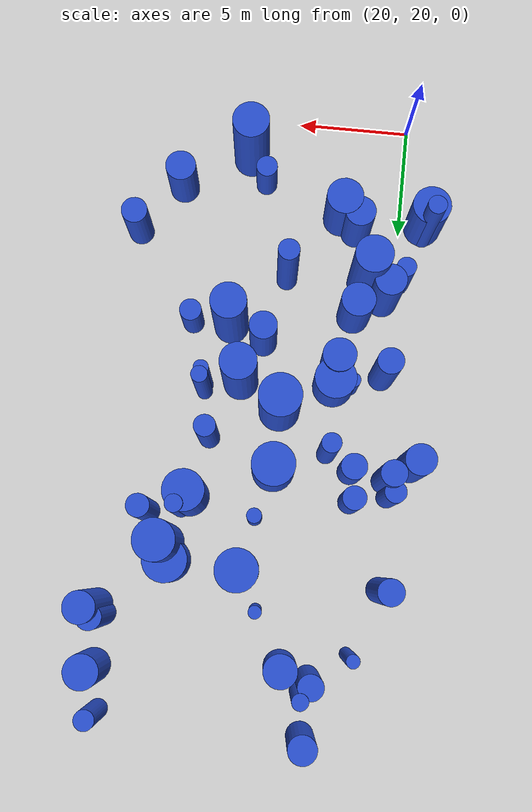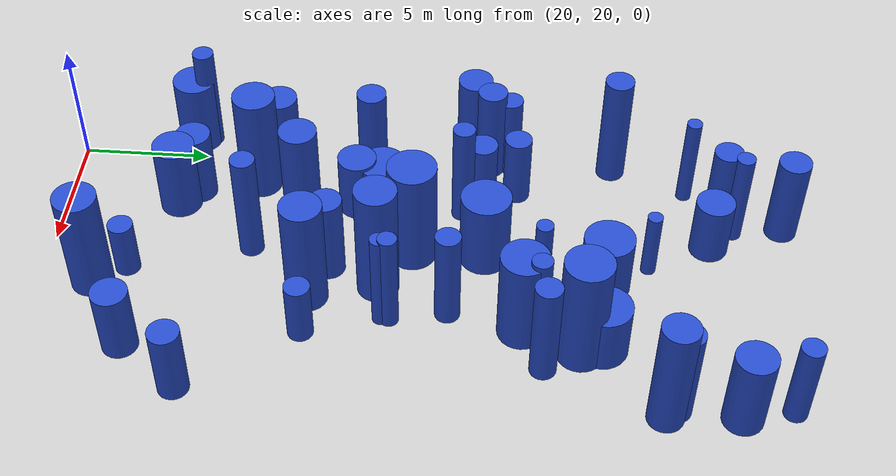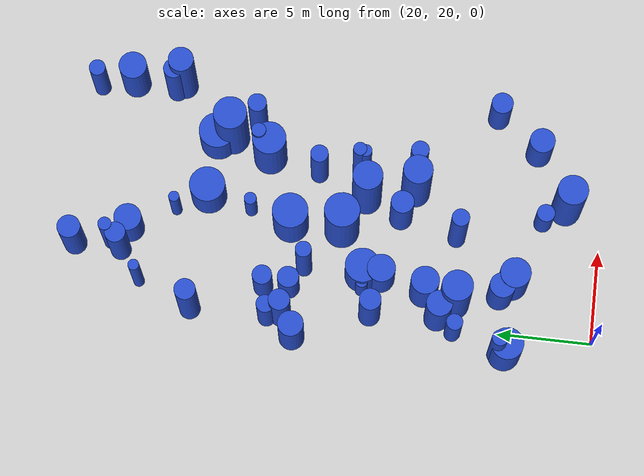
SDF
<sdf version="1.6">
 <world name="default">
  <model name="ground_plane">
   <static>1</static>
   <link name="link">
    <collision name="collision">
     <geometry><plane><normal>0 0 1</normal><size>100 100</size></plane></geometry>
     <surface><friction><ode><mu>100</mu><mu2>50</mu2></ode></friction></surface>
    </collision>
    <visual name="visual">
     <cast_shadows>0</cast_shadows>
     <geometry><plane><normal>0 0 1</normal><size>100 100</size></plane></geometry>
     <material>
      <script><uri>file://media/materials/scripts/gazebo.material</uri><name>Gazebo/Grey</name></script>
     </material>
    </visual>
   </link>
  </model>
  <model name="3">
   <static>0</static>
   <link name="link">
    <inertial>
     <mass>2</mass>
     <inertia><ixx>2.87295</ixx><ixy>0</ixy><ixz>0</ixz><iyy>2.87295</iyy><iyz>0</iyz><izz>0.289082</izz></inertia>
    </inertial>
    <collision name="collision">
     <geometry><cylinder><length>4.04604</length><radius>0.537664</radius></cylinder></geometry>
     <surface><contact><collide_without_contact>1</collide_without_contact></contact></surface>
    </collision>
    <visual name="visual">
     <geometry><cylinder><length>4.04604</length><radius>0.537664</radius></cylinder></geometry>
     <material>
      <script><uri>file://media/materials/scripts/gazebo.material</uri><name>Gazebo/Blue</name></script>
     </material>
    </visual>
    <gravity>0</gravity>
   </link>
   <pose>31.5919 43.4807 2.02302 0 -0 0</pose>
  </model>
  <model name="7">
   <static>0</static>
   <link name="link">
    <inertial>
     <mass>2</mass>
     <inertia><ixx>1.4943</ixx><ixy>0</ixy><ixz>0</ixz><iyy>1.4943</iyy><iyz>0</iyz><izz>0.904454</izz></inertia>
    </inertial>
    <collision name="collision">
     <geometry><cylinder><length>2.50048</length><radius>0.951028</radius></cylinder></geometry>
     <surface><contact><collide_without_contact>1</collide_without_contact></contact></surface>
    </collision>
    <visual name="visual">
     <geometry><cylinder><length>2.50048</length><radius>0.951028</radius></cylinder></geometry>
     <material>
      <script><uri>file://media/materials/scripts/gazebo.material</uri><name>Gazebo/Blue</name></script>
     </material>
    </visual>
    <gravity>0</gravity>
   </link>
   <pose>25.9011 41.0667 1.25024 0 -0 0</pose>
  </model>
  <model name="15">
   <static>0</static>
   <link name="link">
    <inertial>
     <mass>2</mass>
     <inertia><ixx>2.85679</ixx><ixy>0</ixy><ixz>0</ixz><iyy>2.85679</iyy><iyz>0</iyz><izz>0.328589</izz></inertia>
    </inertial>
    <collision name="collision">
     <geometry><cylinder><length>4.01932</length><radius>0.573227</radius></cylinder></geometry>
     <surface><contact><collide_without_contact>1</collide_without_contact></contact></surface>
    </collision>
    <visual name="visual">
     <geometry><cylinder><length>4.01932</length><radius>0.573227</radius></cylinder></geometry>
     <material>
      <script><uri>file://media/materials/scripts/gazebo.material</uri><name>Gazebo/Blue</name></script>
     </material>
    </visual>
    <gravity>0</gravity>
   </link>
   <pose>20.2805 31.834 2.00966 0 -0 0</pose>
  </model>
  <model name="25">
   <static>0</static>
   <link name="link">
    <inertial>
     <mass>2</mass>
     <inertia><ixx>3.93705</ixx><ixy>0</ixy><ixz>0</ixz><iyy>3.93705</iyy><iyz>0</iyz><izz>0.614086</izz></inertia>
    </inertial>
    <collision name="collision">
     <geometry><cylinder><length>4.66691</length><radius>0.783636</radius></cylinder></geometry>
     <surface><contact><collide_without_contact>1</collide_without_contact></contact></surface>
    </collision>
    <visual name="visual">
     <geometry><cylinder><length>4.66691</length><radius>0.783636</radius></cylinder></geometry>
     <material>
      <script><uri>file://media/materials/scripts/gazebo.material</uri><name>Gazebo/Blue</name></script>
     </material>
    </visual>
    <gravity>0</gravity>
   </link>
   <pose>27.2784 30.0628 2.33346 0 -0 0</pose>
  </model>
  <model name="26">
   <static>0</static>
   <link name="link">
    <inertial>
     <mass>2</mass>
     <inertia>
      <ixx>0.763475</ixx>
      <ixy>0</ixy>
      <ixz>0</ixz>
      <iyy>0.763475</iyy>
      <iyz>0</iyz>
      <izz>0.108219</izz>
     </inertia>
    </inertial>
    <collision name="collision">
     <geometry><cylinder><length>2.06305</length><radius>0.328966</radius></cylinder></geometry>
     <surface><contact><collide_without_contact>1</collide_without_contact></contact></surface>
    </collision>
    <visual name="visual">
     <geometry><cylinder><length>2.06305</length><radius>0.328966</radius></cylinder></geometry>
     <material>
      <script><uri>file://media/materials/scripts/gazebo.material</uri><name>Gazebo/Blue</name></script>
     </material>
    </visual>
    <gravity>0</gravity>
   </link>
   <pose>21.6361 32.4049 1.03153 0 -0 0</pose>
  </model>
  <model name="32">
   <static>0</static>
   <link name="link">
    <inertial>
     <mass>2</mass>
     <inertia><ixx>2.84004</ixx><ixy>0</ixy><ixz>0</ixz><iyy>2.84004</iyy><iyz>0</iyz><izz>0.148295</izz></inertia>
    </inertial>
    <collision name="collision">
     <geometry><cylinder><length>4.07374</length><radius>0.385092</radius></cylinder></geometry>
     <surface><contact><collide_without_contact>1</collide_without_contact></contact></surface>
    </collision>
    <visual name="visual">
     <geometry><cylinder><length>4.07374</length><radius>0.385092</radius></cylinder></geometry>
     <material>
      <script><uri>file://media/materials/scripts/gazebo.material</uri><name>Gazebo/Blue</name></script>
     </material>
    </visual>
    <gravity>0</gravity>
   </link>
   <pose>28.69 38.5987 2.03687 0 -0 0</pose>
  </model>
  <model name="43">
   <static>0</static>
   <link name="link">
    <inertial>
     <mass>2</mass>
     <inertia><ixx>3.60699</ixx><ixy>0</ixy><ixz>0</ixz><iyy>3.60699</iyy><iyz>0</iyz><izz>0.218199</izz></inertia>
    </inertial>
    <collision name="collision">
     <geometry><cylinder><length>4.5812</length><radius>0.467118</radius></cylinder></geometry>
     <surface><contact><collide_without_contact>1</collide_without_contact></contact></surface>
    </collision>
    <visual name="visual">
     <geometry><cylinder><length>4.5812</length><radius>0.467118</radius></cylinder></geometry>
     <material>
      <script><uri>file://media/materials/scripts/gazebo.material</uri><name>Gazebo/Blue</name></script>
     </material>
    </visual>
    <gravity>0</gravity>
   </link>
   <pose>24.9631 27.6196 2.2906 0 -0 0</pose>
  </model>
  <model name="51">
   <static>0</static>
   <link name="link">
    <inertial>
     <mass>2</mass>
     <inertia><ixx>1.88248</ixx><ixy>0</ixy><ixz>0</ixz><iyy>1.88248</iyy><iyz>0</iyz><izz>0.65983</izz></inertia>
    </inertial>
    <collision name="collision">
     <geometry><cylinder><length>3.05211</length><radius>0.812299</radius></cylinder></geometry>
     <surface><contact><collide_without_contact>1</collide_without_contact></contact></surface>
    </collision>
    <visual name="visual">
     <geometry><cylinder><length>3.05211</length><radius>0.812299</radius></cylinder></geometry>
     <material>
      <script><uri>file://media/materials/scripts/gazebo.material</uri><name>Gazebo/Blue</name></script>
     </material>
    </visual>
    <gravity>0</gravity>
   </link>
   <pose>22.736 24.4549 1.52606 0 -0 0</pose>
  </model>
  <model name="54">
   <static>0</static>
   <link name="link">
    <inertial>
     <mass>2</mass>
     <inertia><ixx>2.65312</ixx><ixy>0</ixy><ixz>0</ixz><iyy>2.65312</iyy><iyz>0</iyz><izz>0.12546</izz></inertia>
    </inertial>
    <collision name="collision">
     <geometry><cylinder><length>3.94237</length><radius>0.354204</radius></cylinder></geometry>
     <surface><contact><collide_without_contact>1</collide_without_contact></contact></surface>
    </collision>
    <visual name="visual">
     <geometry><cylinder><length>3.94237</length><radius>0.354204</radius></cylinder></geometry>
     <material>
      <script><uri>file://media/materials/scripts/gazebo.material</uri><name>Gazebo/Blue</name></script>
     </material>
    </visual>
    <gravity>0</gravity>
   </link>
   <pose>22.8106 45.9834 1.97119 0 -0 0</pose>
  </model>
  <model name="56">
   <static>0</static>
   <link name="link">
    <inertial>
     <mass>2</mass>
     <inertia><ixx>1.5368</ixx><ixy>0</ixy><ixz>0</ixz><iyy>1.5368</iyy><iyz>0</iyz><izz>0.455787</izz></inertia>
    </inertial>
    <collision name="collision">
     <geometry><cylinder><length>2.8024</length><radius>0.67512</radius></cylinder></geometry>
     <surface><contact><collide_without_contact>1</collide_without_contact></contact></surface>
    </collision>
    <visual name="visual">
     <geometry><cylinder><length>2.8024</length><radius>0.67512</radius></cylinder></geometry>
     <material>
      <script><uri>file://media/materials/scripts/gazebo.material</uri><name>Gazebo/Blue</name></script>
     </material>
    </visual>
    <gravity>0</gravity>
   </link>
   <pose>30.1142 23.6523 1.4012 0 -0 0</pose>
  </model>
  <model name="58">
   <static>0</static>
   <link name="link">
    <inertial>
     <mass>2</mass>
     <inertia><ixx>1.07348</ixx><ixy>0</ixy><ixz>0</ixz><iyy>1.07348</iyy><iyz>0</iyz><izz>0.109076</izz></inertia>
    </inertial>
    <collision name="collision">
     <geometry><cylinder><length>2.47258</length><radius>0.330266</radius></cylinder></geometry>
     <surface><contact><collide_without_contact>1</collide_without_contact></contact></surface>
    </collision>
    <visual name="visual">
     <geometry><cylinder><length>2.47258</length><radius>0.330266</radius></cylinder></geometry>
     <material>
      <script><uri>file://media/materials/scripts/gazebo.material</uri><name>Gazebo/Blue</name></script>
     </material>
    </visual>
    <gravity>0</gravity>
   </link>
   <pose>25.3786 38.7126 1.23629 0 -0 0</pose>
  </model>
  <model name="64">
   <static>0</static>
   <link name="link">
    <inertial>
     <mass>2</mass>
     <inertia><ixx>3.72268</ixx><ixy>0</ixy><ixz>0</ixz><iyy>3.72268</iyy><iyz>0</iyz><izz>0.868696</izz></inertia>
    </inertial>
    <collision name="collision">
     <geometry><cylinder><length>4.44185</length><radius>0.932039</radius></cylinder></geometry>
     <surface><contact><collide_without_contact>1</collide_without_contact></contact></surface>
    </collision>
    <visual name="visual">
     <geometry><cylinder><length>4.44185</length><radius>0.932039</radius></cylinder></geometry>
     <material>
      <script><uri>file://media/materials/scripts/gazebo.material</uri><name>Gazebo/Blue</name></script>
     </material>
    </visual>
    <gravity>0</gravity>
   </link>
   <pose>24.749 33.7716 2.22092 0 -0 0</pose>
  </model>
  <model name="66">
   <static>0</static>
   <link name="link">
    <inertial>
     <mass>2</mass>
     <inertia><ixx>2.90411</ixx><ixy>0</ixy><ixz>0</ixz><iyy>2.90411</iyy><iyz>0</iyz><izz>0.1065</izz></inertia>
    </inertial>
    <collision name="collision">
     <geometry><cylinder><length>4.13584</length><radius>0.326343</radius></cylinder></geometry>
     <surface><contact><collide_without_contact>1</collide_without_contact></contact></surface>
    </collision>
    <visual name="visual">
     <geometry><cylinder><length>4.13584</length><radius>0.326343</radius></cylinder></geometry>
     <material>
      <script><uri>file://media/materials/scripts/gazebo.material</uri><name>Gazebo/Blue</name></script>
     </material>
    </visual>
    <gravity>0</gravity>
   </link>
   <pose>28.1602 32.8868 2.06792 0 -0 0</pose>
  </model>
  <model name="75">
   <static>0</static>
   <link name="link">
    <inertial>
     <mass>2</mass>
     <inertia><ixx>1.54398</ixx><ixy>0</ixy><ixz>0</ixz><iyy>1.54398</iyy><iyz>0</iyz><izz>0.272794</izz></inertia>
    </inertial>
    <collision name="collision">
     <geometry><cylinder><length>2.90611</length><radius>0.522297</radius></cylinder></geometry>
     <surface><contact><collide_without_contact>1</collide_without_contact></contact></surface>
    </collision>
    <visual name="visual">
     <geometry><cylinder><length>2.90611</length><radius>0.522297</radius></cylinder></geometry>
     <material>
      <script><uri>file://media/materials/scripts/gazebo.material</uri><name>Gazebo/Blue</name></script>
     </material>
    </visual>
    <gravity>0</gravity>
   </link>
   <pose>21.2322 37.5969 1.45306 0 -0 0</pose>
  </model>
  <model name="76">
   <static>0</static>
   <link name="link">
    <inertial>
     <mass>2</mass>
     <inertia><ixx>3.77454</ixx><ixy>0</ixy><ixz>0</ixz><iyy>3.77454</iyy><iyz>0</iyz><izz>0.6764</izz></inertia>
    </inertial>
    <collision name="collision">
     <geometry><cylinder><length>4.54071</length><radius>0.822435</radius></cylinder></geometry>
     <surface><contact><collide_without_contact>1</collide_without_contact></contact></surface>
    </collision>
    <visual name="visual">
     <geometry><cylinder><length>4.54071</length><radius>0.822435</radius></cylinder></geometry>
     <material>
      <script><uri>file://media/materials/scripts/gazebo.material</uri><name>Gazebo/Blue</name></script>
     </material>
    </visual>
    <gravity>0</gravity>
   </link>
   <pose>21.3706 27.4423 2.27035 0 -0 0</pose>
  </model>
  <model name="81">
   <static>0</static>
   <link name="link">
    <inertial>
     <mass>2</mass>
     <inertia><ixx>2.82695</ixx><ixy>0</ixy><ixz>0</ixz><iyy>2.82695</iyy><iyz>0</iyz><izz>0.224047</izz></inertia>
    </inertial>
    <collision name="collision">
     <geometry><cylinder><length>4.03603</length><radius>0.473336</radius></cylinder></geometry>
     <surface><contact><collide_without_contact>1</collide_without_contact></contact></surface>
    </collision>
    <visual name="visual">
     <geometry><cylinder><length>4.03603</length><radius>0.473336</radius></cylinder></geometry>
     <material>
      <script><uri>file://media/materials/scripts/gazebo.material</uri><name>Gazebo/Blue</name></script>
     </material>
    </visual>
    <gravity>0</gravity>
   </link>
   <pose>27.7594 35.2916 2.01802 0 -0 0</pose>
  </model>
  <model name="97">
   <static>0</static>
   <link name="link">
    <inertial>
     <mass>2</mass>
     <inertia><ixx>1.30672</ixx><ixy>0</ixy><ixz>0</ixz><iyy>1.30672</iyy><iyz>0</iyz><izz>0.329685</izz></inertia>
    </inertial>
    <collision name="collision">
     <geometry><cylinder><length>2.61749</length><radius>0.574182</radius></cylinder></geometry>
     <surface><contact><collide_without_contact>1</collide_without_contact></contact></surface>
    </collision>
    <visual name="visual">
     <geometry><cylinder><length>2.61749</length><radius>0.574182</radius></cylinder></geometry>
     <material>
      <script><uri>file://media/materials/scripts/gazebo.material</uri><name>Gazebo/Blue</name></script>
     </material>
    </visual>
    <gravity>0</gravity>
   </link>
   <pose>21.3281 36.24 1.30875 0 -0 0</pose>
  </model>
  <model name="98">
   <static>0</static>
   <link name="link">
    <inertial>
     <mass>2</mass>
     <inertia><ixx>1.39445</ixx><ixy>0</ixy><ixz>0</ixz><iyy>1.39445</iyy><iyz>0</iyz><izz>0.853352</izz></inertia>
    </inertial>
    <collision name="collision">
     <geometry><cylinder><length>2.4097</length><radius>0.92377</radius></cylinder></geometry>
     <surface><contact><collide_without_contact>1</collide_without_contact></contact></surface>
    </collision>
    <visual name="visual">
     <geometry><cylinder><length>2.4097</length><radius>0.92377</radius></cylinder></geometry>
     <material>
      <script><uri>file://media/materials/scripts/gazebo.material</uri><name>Gazebo/Blue</name></script>
     </material>
    </visual>
    <gravity>0</gravity>
   </link>
   <pose>22.4275 32.4383 1.20485 0 -0 0</pose>
  </model>
  <model name="103">
   <static>0</static>
   <link name="link">
    <inertial>
     <mass>2</mass>
     <inertia><ixx>2.90185</ixx><ixy>0</ixy><ixz>0</ixz><iyy>2.90185</iyy><iyz>0</iyz><izz>0.799227</izz></inertia>
    </inertial>
    <collision name="collision">
     <geometry><cylinder><length>3.87472</length><radius>0.893995</radius></cylinder></geometry>
     <surface><contact><collide_without_contact>1</collide_without_contact></contact></surface>
    </collision>
    <visual name="visual">
     <geometry><cylinder><length>3.87472</length><radius>0.893995</radius></cylinder></geometry>
     <material>
      <script><uri>file://media/materials/scripts/gazebo.material</uri><name>Gazebo/Blue</name></script>
     </material>
    </visual>
    <gravity>0</gravity>
   </link>
   <pose>28.3749 38.0165 1.93736 0 -0 0</pose>
  </model>
  <model name="118">
   <static>0</static>
   <link name="link">
    <inertial>
     <mass>2</mass>
     <inertia>
      <ixx>2.44235</ixx>
      <ixy>0</ixy>
      <ixz>0</ixz>
      <iyy>2.44235</iyy>
      <iyz>0</iyz>
      <izz>0.0851223</izz>
     </inertia>
    </inertial>
    <collision name="collision">
     <geometry><cylinder><length>3.79456</length><radius>0.291757</radius></cylinder></geometry>
     <surface><contact><collide_without_contact>1</collide_without_contact></contact></surface>
    </collision>
    <visual name="visual">
     <geometry><cylinder><length>3.79456</length><radius>0.291757</radius></cylinder></geometry>
     <material>
      <script><uri>file://media/materials/scripts/gazebo.material</uri><name>Gazebo/Blue</name></script>
     </material>
    </visual>
    <gravity>0</gravity>
   </link>
   <pose>20.8287 44.2206 1.89728 0 -0 0</pose>
  </model>
  <model name="119">
   <static>0</static>
   <link name="link">
    <inertial>
     <mass>2</mass>
     <inertia><ixx>2.4098</ixx><ixy>0</ixy><ixz>0</ixz><iyy>2.4098</iyy><iyz>0</iyz><izz>0.459918</izz></inertia>
    </inertial>
    <collision name="collision">
     <geometry><cylinder><length>3.61649</length><radius>0.678173</radius></cylinder></geometry>
     <surface><contact><collide_without_contact>1</collide_without_contact></contact></surface>
    </collision>
    <visual name="visual">
     <geometry><cylinder><length>3.61649</length><radius>0.678173</radius></cylinder></geometry>
     <material>
      <script><uri>file://media/materials/scripts/gazebo.material</uri><name>Gazebo/Blue</name></script>
     </material>
    </visual>
    <gravity>0</gravity>
   </link>
   <pose>18.6615 35.7969 1.80825 0 -0 0</pose>
  </model>
  <model name="122">
   <static>0</static>
   <link name="link">
    <inertial>
     <mass>2</mass>
     <inertia><ixx>1.62985</ixx><ixy>0</ixy><ixz>0</ixz><iyy>1.62985</iyy><iyz>0</iyz><izz>0.333872</izz></inertia>
    </inertial>
    <collision name="collision">
     <geometry><cylinder><length>2.96268</length><radius>0.577817</radius></cylinder></geometry>
     <surface><contact><collide_without_contact>1</collide_without_contact></contact></surface>
    </collision>
    <visual name="visual">
     <geometry><cylinder><length>2.96268</length><radius>0.577817</radius></cylinder></geometry>
     <material>
      <script><uri>file://media/materials/scripts/gazebo.material</uri><name>Gazebo/Blue</name></script>
     </material>
    </visual>
    <gravity>0</gravity>
   </link>
   <pose>31.8996 25.9543 1.48134 0 -0 0</pose>
  </model>
  <model name="126">
   <static>0</static>
   <link name="link">
    <inertial>
     <mass>2</mass>
     <inertia><ixx>3.43668</ixx><ixy>0</ixy><ixz>0</ixz><iyy>3.43668</iyy><iyz>0</iyz><izz>0.169152</izz></inertia>
    </inertial>
    <collision name="collision">
     <geometry><cylinder><length>4.48471</length><radius>0.411281</radius></cylinder></geometry>
     <surface><contact><collide_without_contact>1</collide_without_contact></contact></surface>
    </collision>
    <visual name="visual">
     <geometry><cylinder><length>4.48471</length><radius>0.411281</radius></cylinder></geometry>
     <material>
      <script><uri>file://media/materials/scripts/gazebo.material</uri><name>Gazebo/Blue</name></script>
     </material>
    </visual>
    <gravity>0</gravity>
   </link>
   <pose>18.8852 25.0351 2.24236 0 -0 0</pose>
  </model>
  <model name="127">
   <static>0</static>
   <link name="link">
    <inertial>
     <mass>2</mass>
     <inertia><ixx>3.25609</ixx><ixy>0</ixy><ixz>0</ixz><iyy>3.25609</iyy><iyz>0</iyz><izz>0.181995</izz></inertia>
    </inertial>
    <collision name="collision">
     <geometry><cylinder><length>4.35782</length><radius>0.426609</radius></cylinder></geometry>
     <surface><contact><collide_without_contact>1</collide_without_contact></contact></surface>
    </collision>
    <visual name="visual">
     <geometry><cylinder><length>4.35782</length><radius>0.426609</radius></cylinder></geometry>
     <material>
      <script><uri>file://media/materials/scripts/gazebo.material</uri><name>Gazebo/Blue</name></script>
     </material>
    </visual>
    <gravity>0</gravity>
   </link>
   <pose>22.4694 35.5467 2.17891 0 -0 0</pose>
  </model>
  <model name="129">
   <static>0</static>
   <link name="link">
    <inertial>
     <mass>2</mass>
     <inertia><ixx>1.26946</ixx><ixy>0</ixy><ixz>0</ixz><iyy>1.26946</iyy><iyz>0</iyz><izz>0.536917</izz></inertia>
    </inertial>
    <collision name="collision">
     <geometry><cylinder><length>2.45072</length><radius>0.732746</radius></cylinder></geometry>
     <surface><contact><collide_without_contact>1</collide_without_contact></contact></surface>
    </collision>
    <visual name="visual">
     <geometry><cylinder><length>2.45072</length><radius>0.732746</radius></cylinder></geometry>
     <material>
      <script><uri>file://media/materials/scripts/gazebo.material</uri><name>Gazebo/Blue</name></script>
     </material>
    </visual>
    <gravity>0</gravity>
   </link>
   <pose>23.6721 45.0275 1.22536 0 -0 0</pose>
  </model>
  <model name="131">
   <static>0</static>
   <link name="link">
    <inertial>
     <mass>2</mass>
     <inertia><ixx>1.52899</ixx><ixy>0</ixy><ixz>0</ixz><iyy>1.52899</iyy><iyz>0</iyz><izz>0.188706</izz></inertia>
    </inertial>
    <collision name="collision">
     <geometry><cylinder><length>2.9339</length><radius>0.434403</radius></cylinder></geometry>
     <surface><contact><collide_without_contact>1</collide_without_contact></contact></surface>
    </collision>
    <visual name="visual">
     <geometry><cylinder><length>2.9339</length><radius>0.434403</radius></cylinder></geometry>
     <material>
      <script><uri>file://media/materials/scripts/gazebo.material</uri><name>Gazebo/Blue</name></script>
     </material>
    </visual>
    <gravity>0</gravity>
   </link>
   <pose>19.8014 27.3711 1.46695 0 -0 0</pose>
  </model>
  <model name="132">
   <static>0</static>
   <link name="link">
    <inertial>
     <mass>2</mass>
     <inertia><ixx>1.34332</ixx><ixy>0</ixy><ixz>0</ixz><iyy>1.34332</iyy><iyz>0</iyz><izz>0.953483</izz></inertia>
    </inertial>
    <collision name="collision">
     <geometry><cylinder><length>2.28023</length><radius>0.976464</radius></cylinder></geometry>
     <surface><contact><collide_without_contact>1</collide_without_contact></contact></surface>
    </collision>
    <visual name="visual">
     <geometry><cylinder><length>2.28023</length><radius>0.976464</radius></cylinder></geometry>
     <material>
      <script><uri>file://media/materials/scripts/gazebo.material</uri><name>Gazebo/Blue</name></script>
     </material>
    </visual>
    <gravity>0</gravity>
   </link>
   <pose>28.9866 40.9178 1.14011 0 -0 0</pose>
  </model>
  <model name="133">
   <static>0</static>
   <link name="link">
    <inertial>
     <mass>2</mass>
     <inertia><ixx>3.03693</ixx><ixy>0</ixy><ixz>0</ixz><iyy>3.03693</iyy><iyz>0</iyz><izz>0.127756</izz></inertia>
    </inertial>
    <collision name="collision">
     <geometry><cylinder><length>4.22354</length><radius>0.35743</radius></cylinder></geometry>
     <surface><contact><collide_without_contact>1</collide_without_contact></contact></surface>
    </collision>
    <visual name="visual">
     <geometry><cylinder><length>4.22354</length><radius>0.35743</radius></cylinder></geometry>
     <material>
      <script><uri>file://media/materials/scripts/gazebo.material</uri><name>Gazebo/Blue</name></script>
     </material>
    </visual>
    <gravity>0</gravity>
   </link>
   <pose>28.1932 33.193 2.11177 0 -0 0</pose>
  </model>
  <model name="135">
   <static>0</static>
   <link name="link">
    <inertial>
     <mass>2</mass>
     <inertia><ixx>2.03363</ixx><ixy>0</ixy><ixz>0</ixz><iyy>2.03363</iyy><iyz>0</iyz><izz>0.561482</izz></inertia>
    </inertial>
    <collision name="collision">
     <geometry><cylinder><length>3.24305</length><radius>0.749321</radius></cylinder></geometry>
     <surface><contact><collide_without_contact>1</collide_without_contact></contact></surface>
    </collision>
    <visual name="visual">
     <geometry><cylinder><length>3.24305</length><radius>0.749321</radius></cylinder></geometry>
     <material>
      <script><uri>file://media/materials/scripts/gazebo.material</uri><name>Gazebo/Blue</name></script>
     </material>
    </visual>
    <gravity>0</gravity>
   </link>
   <pose>21.7817 29.1035 1.62152 0 -0 0</pose>
  </model>
  <model name="139">
   <static>0</static>
   <link name="link">
    <inertial>
     <mass>2</mass>
     <inertia><ixx>1.75257</ixx><ixy>0</ixy><ixz>0</ixz><iyy>1.75257</iyy><iyz>0</iyz><izz>0.456247</izz></inertia>
    </inertial>
    <collision name="collision">
     <geometry><cylinder><length>3.02435</length><radius>0.675461</radius></cylinder></geometry>
     <surface><contact><collide_without_contact>1</collide_without_contact></contact></surface>
    </collision>
    <visual name="visual">
     <geometry><cylinder><length>3.02435</length><radius>0.675461</radius></cylinder></geometry>
     <material>
      <script><uri>file://media/materials/scripts/gazebo.material</uri><name>Gazebo/Blue</name></script>
     </material>
    </visual>
    <gravity>0</gravity>
   </link>
   <pose>22.0035 25.0688 1.51217 0 -0 0</pose>
  </model>
  <model name="152">
   <static>0</static>
   <link name="link">
    <inertial>
     <mass>2</mass>
     <inertia><ixx>3.84591</ixx><ixy>0</ixy><ixz>0</ixz><iyy>3.84591</iyy><iyz>0</iyz><izz>0.314383</izz></inertia>
    </inertial>
    <collision name="collision">
     <geometry><cylinder><length>4.7045</length><radius>0.560698</radius></cylinder></geometry>
     <surface><contact><collide_without_contact>1</collide_without_contact></contact></surface>
    </collision>
    <visual name="visual">
     <geometry><cylinder><length>4.7045</length><radius>0.560698</radius></cylinder></geometry>
     <material>
      <script><uri>file://media/materials/scripts/gazebo.material</uri><name>Gazebo/Blue</name></script>
     </material>
    </visual>
    <gravity>0</gravity>
   </link>
   <pose>19.626 41.337 2.35225 0 -0 0</pose>
  </model>
  <model name="159">
   <static>0</static>
   <link name="link">
    <inertial>
     <mass>2</mass>
     <inertia><ixx>2.39022</ixx><ixy>0</ixy><ixz>0</ixz><iyy>2.39022</iyy><iyz>0</iyz><izz>0.376339</izz></inertia>
    </inertial>
    <collision name="collision">
     <geometry><cylinder><length>3.63487</length><radius>0.613464</radius></cylinder></geometry>
     <surface><contact><collide_without_contact>1</collide_without_contact></contact></surface>
    </collision>
    <visual name="visual">
     <geometry><cylinder><length>3.63487</length><radius>0.613464</radius></cylinder></geometry>
     <material>
      <script><uri>file://media/materials/scripts/gazebo.material</uri><name>Gazebo/Blue</name></script>
     </material>
    </visual>
    <gravity>0</gravity>
   </link>
   <pose>22.537 47.8672 1.81744 0 -0 0</pose>
  </model>
  <model name="160">
   <static>0</static>
   <link name="link">
    <inertial>
     <mass>2</mass>
     <inertia><ixx>4.07176</ixx><ixy>0</ixy><ixz>0</ixz><iyy>4.07176</iyy><iyz>0</iyz><izz>0.790675</izz></inertia>
    </inertial>
    <collision name="collision">
     <geometry><cylinder><length>4.69665</length><radius>0.889199</radius></cylinder></geometry>
     <surface><contact><collide_without_contact>1</collide_without_contact></contact></surface>
    </collision>
    <visual name="visual">
     <geometry><cylinder><length>4.69665</length><radius>0.889199</radius></cylinder></geometry>
     <material>
      <script><uri>file://media/materials/scripts/gazebo.material</uri><name>Gazebo/Blue</name></script>
     </material>
    </visual>
    <gravity>0</gravity>
   </link>
   <pose>29.2668 40.163 2.34833 0 -0 0</pose>
  </model>
  <model name="163">
   <static>0</static>
   <link name="link">
    <inertial>
     <mass>2</mass>
     <inertia><ixx>2.11099</ixx><ixy>0</ixy><ixz>0</ixz><iyy>2.11099</iyy><iyz>0</iyz><izz>0.90581</izz></inertia>
    </inertial>
    <collision name="collision">
     <geometry><cylinder><length>3.15413</length><radius>0.951741</radius></cylinder></geometry>
     <surface><contact><collide_without_contact>1</collide_without_contact></contact></surface>
    </collision>
    <visual name="visual">
     <geometry><cylinder><length>3.15413</length><radius>0.951741</radius></cylinder></geometry>
     <material>
      <script><uri>file://media/materials/scripts/gazebo.material</uri><name>Gazebo/Blue</name></script>
     </material>
    </visual>
    <gravity>0</gravity>
   </link>
   <pose>24.7666 36.5112 1.57706 0 -0 0</pose>
  </model>
  <model name="166">
   <static>0</static>
   <link name="link">
    <inertial>
     <mass>2</mass>
     <inertia><ixx>4.43019</ixx><ixy>0</ixy><ixz>0</ixz><iyy>4.43019</iyy><iyz>0</iyz><izz>0.627895</izz></inertia>
    </inertial>
    <collision name="collision">
     <geometry><cylinder><length>4.96965</length><radius>0.792399</radius></cylinder></geometry>
     <surface><contact><collide_without_contact>1</collide_without_contact></contact></surface>
    </collision>
    <visual name="visual">
     <geometry><cylinder><length>4.96965</length><radius>0.792399</radius></cylinder></geometry>
     <material>
      <script><uri>file://media/materials/scripts/gazebo.material</uri><name>Gazebo/Blue</name></script>
     </material>
    </visual>
    <gravity>0</gravity>
   </link>
   <pose>26.6027 32.6341 2.48483 0 -0 0</pose>
  </model>
  <model name="173">
   <static>0</static>
   <link name="link">
    <inertial>
     <mass>2</mass>
     <inertia><ixx>1.9962</ixx><ixy>0</ixy><ixz>0</ixz><iyy>1.9962</iyy><iyz>0</iyz><izz>0.718032</izz></inertia>
    </inertial>
    <collision name="collision">
     <geometry><cylinder><length>3.13418</length><radius>0.847368</radius></cylinder></geometry>
     <surface><contact><collide_without_contact>1</collide_without_contact></contact></surface>
    </collision>
    <visual name="visual">
     <geometry><cylinder><length>3.13418</length><radius>0.847368</radius></cylinder></geometry>
     <material>
      <script><uri>file://media/materials/scripts/gazebo.material</uri><name>Gazebo/Blue</name></script>
     </material>
    </visual>
    <gravity>0</gravity>
   </link>
   <pose>18.9255 24.5537 1.56709 0 -0 0</pose>
  </model>
  <model name="186">
   <static>0</static>
   <link name="link">
    <inertial>
     <mass>2</mass>
     <inertia><ixx>1.10663</ixx><ixy>0</ixy><ixz>0</ixz><iyy>1.10663</iyy><iyz>0</iyz><izz>0.234851</izz></inertia>
    </inertial>
    <collision name="collision">
     <geometry><cylinder><length>2.43624</length><radius>0.484614</radius></cylinder></geometry>
     <surface><contact><collide_without_contact>1</collide_without_contact></contact></surface>
    </collision>
    <visual name="visual">
     <geometry><cylinder><length>2.43624</length><radius>0.484614</radius></cylinder></geometry>
     <material>
      <script><uri>file://media/materials/scripts/gazebo.material</uri><name>Gazebo/Blue</name></script>
     </material>
    </visual>
    <gravity>0</gravity>
   </link>
   <pose>29.0255 30.0436 1.21812 0 -0 0</pose>
  </model>
  <model name="187">
   <static>0</static>
   <link name="link">
    <inertial>
     <mass>2</mass>
     <inertia><ixx>3.90208</ixx><ixy>0</ixy><ixz>0</ixz><iyy>3.90208</iyy><iyz>0</iyz><izz>0.455166</izz></inertia>
    </inertial>
    <collision name="collision">
     <geometry><cylinder><length>4.69542</length><radius>0.67466</radius></cylinder></geometry>
     <surface><contact><collide_without_contact>1</collide_without_contact></contact></surface>
    </collision>
    <visual name="visual">
     <geometry><cylinder><length>4.69542</length><radius>0.67466</radius></cylinder></geometry>
     <material>
      <script><uri>file://media/materials/scripts/gazebo.material</uri><name>Gazebo/Blue</name></script>
     </material>
    </visual>
    <gravity>0</gravity>
   </link>
   <pose>31.9163 43.0917 2.34771 0 -0 0</pose>
  </model>
  <model name="191">
   <static>0</static>
   <link name="link">
    <inertial>
     <mass>2</mass>
     <inertia><ixx>2.66114</ixx><ixy>0</ixy><ixz>0</ixz><iyy>2.66114</iyy><iyz>0</iyz><izz>0.299276</izz></inertia>
    </inertial>
    <collision name="collision">
     <geometry><cylinder><length>3.88188</length><radius>0.547062</radius></cylinder></geometry>
     <surface><contact><collide_without_contact>1</collide_without_contact></contact></surface>
    </collision>
    <visual name="visual">
     <geometry><cylinder><length>3.88188</length><radius>0.547062</radius></cylinder></geometry>
     <material>
      <script><uri>file://media/materials/scripts/gazebo.material</uri><name>Gazebo/Blue</name></script>
     </material>
    </visual>
    <gravity>0</gravity>
   </link>
   <pose>22.434 45.396 1.94094 0 -0 0</pose>
  </model>
  <model name="202">
   <static>0</static>
   <link name="link">
    <inertial>
     <mass>2</mass>
     <inertia><ixx>2.13112</ixx><ixy>0</ixy><ixz>0</ixz><iyy>2.13112</iyy><iyz>0</iyz><izz>0.188496</izz></inertia>
    </inertial>
    <collision name="collision">
     <geometry><cylinder><length>3.49589</length><radius>0.434161</radius></cylinder></geometry>
     <surface><contact><collide_without_contact>1</collide_without_contact></contact></surface>
    </collision>
    <visual name="visual">
     <geometry><cylinder><length>3.49589</length><radius>0.434161</radius></cylinder></geometry>
     <material>
      <script><uri>file://media/materials/scripts/gazebo.material</uri><name>Gazebo/Blue</name></script>
     </material>
    </visual>
    <gravity>0</gravity>
   </link>
   <pose>31.3768 47.5746 1.74794 0 -0 0</pose>
  </model>
  <model name="203">
   <static>0</static>
   <link name="link">
    <inertial>
     <mass>2</mass>
     <inertia><ixx>2.79883</ixx><ixy>0</ixy><ixz>0</ixz><iyy>2.79883</iyy><iyz>0</iyz><izz>0.322684</izz></inertia>
    </inertial>
    <collision name="collision">
     <geometry><cylinder><length>3.97806</length><radius>0.568053</radius></cylinder></geometry>
     <surface><contact><collide_without_contact>1</collide_without_contact></contact></surface>
    </collision>
    <visual name="visual">
     <geometry><cylinder><length>3.97806</length><radius>0.568053</radius></cylinder></geometry>
     <material>
      <script><uri>file://media/materials/scripts/gazebo.material</uri><name>Gazebo/Blue</name></script>
     </material>
    </visual>
    <gravity>0</gravity>
   </link>
   <pose>19.7723 36.5093 1.98903 0 -0 0</pose>
  </model>
  <model name="207">
   <static>0</static>
   <link name="link">
    <inertial>
     <mass>2</mass>
     <inertia><ixx>2.27306</ixx><ixy>0</ixy><ixz>0</ixz><iyy>2.27306</iyy><iyz>0</iyz><izz>0.377745</izz></inertia>
    </inertial>
    <collision name="collision">
     <geometry><cylinder><length>3.53626</length><radius>0.61461</radius></cylinder></geometry>
     <surface><contact><collide_without_contact>1</collide_without_contact></contact></surface>
    </collision>
    <visual name="visual">
     <geometry><cylinder><length>3.53626</length><radius>0.61461</radius></cylinder></geometry>
     <material>
      <script><uri>file://media/materials/scripts/gazebo.material</uri><name>Gazebo/Blue</name></script>
     </material>
    </visual>
    <gravity>0</gravity>
   </link>
   <pose>25.7611 30.6959 1.76813 0 -0 0</pose>
  </model>
  <model name="212">
   <static>0</static>
   <link name="link">
    <inertial>
     <mass>2</mass>
     <inertia><ixx>2.0892</ixx><ixy>0</ixy><ixz>0</ixz><iyy>2.0892</iyy><iyz>0</iyz><izz>0.556859</izz></inertia>
    </inertial>
    <collision name="collision">
     <geometry><cylinder><length>3.29615</length><radius>0.74623</radius></cylinder></geometry>
     <surface><contact><collide_without_contact>1</collide_without_contact></contact></surface>
    </collision>
    <visual name="visual">
     <geometry><cylinder><length>3.29615</length><radius>0.74623</radius></cylinder></geometry>
     <material>
      <script><uri>file://media/materials/scripts/gazebo.material</uri><name>Gazebo/Blue</name></script>
     </material>
    </visual>
    <gravity>0</gravity>
   </link>
   <pose>31.7746 45.7397 1.64808 0 -0 0</pose>
  </model>
  <model name="220">
   <static>0</static>
   <link name="link">
    <inertial>
     <mass>2</mass>
     <inertia><ixx>1.33012</ixx><ixy>0</ixy><ixz>0</ixz><iyy>1.33012</iyy><iyz>0</iyz><izz>0.081176</izz></inertia>
    </inertial>
    <collision name="collision">
     <geometry><cylinder><length>2.78158</length><radius>0.284914</radius></cylinder></geometry>
     <surface><contact><collide_without_contact>1</collide_without_contact></contact></surface>
    </collision>
    <visual name="visual">
     <geometry><cylinder><length>2.78158</length><radius>0.284914</radius></cylinder></geometry>
     <material>
      <script><uri>file://media/materials/scripts/gazebo.material</uri><name>Gazebo/Blue</name></script>
     </material>
    </visual>
    <gravity>0</gravity>
   </link>
   <pose>24.9616 42.705 1.39079 0 -0 0</pose>
  </model>
  <model name="226">
   <static>0</static>
   <link name="link">
    <inertial>
     <mass>2</mass>
     <inertia><ixx>2.63112</ixx><ixy>0</ixy><ixz>0</ixz><iyy>2.63112</iyy><iyz>0</iyz><izz>0.472268</izz></inertia>
    </inertial>
    <collision name="collision">
     <geometry><cylinder><length>3.79077</length><radius>0.687218</radius></cylinder></geometry>
     <surface><contact><collide_without_contact>1</collide_without_contact></contact></surface>
    </collision>
    <visual name="visual">
     <geometry><cylinder><length>3.79077</length><radius>0.687218</radius></cylinder></geometry>
     <material>
      <script><uri>file://media/materials/scripts/gazebo.material</uri><name>Gazebo/Blue</name></script>
     </material>
    </visual>
    <gravity>0</gravity>
   </link>
   <pose>20.5146 28.2637 1.89539 0 -0 0</pose>
  </model>
  <model name="227">
   <static>0</static>
   <link name="link">
    <inertial>
     <mass>2</mass>
     <inertia><ixx>1.36119</ixx><ixy>0</ixy><ixz>0</ixz><iyy>1.36119</iyy><iyz>0</iyz><izz>0.562468</izz></inertia>
    </inertial>
    <collision name="collision">
     <geometry><cylinder><length>2.54553</length><radius>0.749979</radius></cylinder></geometry>
     <surface><contact><collide_without_contact>1</collide_without_contact></contact></surface>
    </collision>
    <visual name="visual">
     <geometry><cylinder><length>2.54553</length><radius>0.749979</radius></cylinder></geometry>
     <material>
      <script><uri>file://media/materials/scripts/gazebo.material</uri><name>Gazebo/Blue</name></script>
     </material>
    </visual>
    <gravity>0</gravity>
   </link>
   <pose>22.3489 31.445 1.27276 0 -0 0</pose>
  </model>
  <model name="237">
   <static>0</static>
   <link name="link">
    <inertial>
     <mass>2</mass>
     <inertia>
      <ixx>0.971185</ixx>
      <ixy>0</ixy>
      <ixz>0</ixz>
      <iyy>0.971185</iyy>
      <iyz>0</iyz>
      <izz>0.227514</izz>
     </inertia>
    </inertial>
    <collision name="collision">
     <geometry><cylinder><length>2.26816</length><radius>0.476984</radius></cylinder></geometry>
     <surface><contact><collide_without_contact>1</collide_without_contact></contact></surface>
    </collision>
    <visual name="visual">
     <geometry><cylinder><length>2.26816</length><radius>0.476984</radius></cylinder></geometry>
     <material>
      <script><uri>file://media/materials/scripts/gazebo.material</uri><name>Gazebo/Blue</name></script>
     </material>
    </visual>
    <gravity>0</gravity>
   </link>
   <pose>26.3188 23.1014 1.13408 0 -0 0</pose>
  </model>
  <model name="241">
   <static>0</static>
   <link name="link">
    <inertial>
     <mass>2</mass>
     <inertia><ixx>3.17466</ixx><ixy>0</ixy><ixz>0</ixz><iyy>3.17466</iyy><iyz>0</iyz><izz>0.246086</izz></inertia>
    </inertial>
    <collision name="collision">
     <geometry><cylinder><length>4.27898</length><radius>0.496071</radius></cylinder></geometry>
     <surface><contact><collide_without_contact>1</collide_without_contact></contact></surface>
    </collision>
    <visual name="visual">
     <geometry><cylinder><length>4.27898</length><radius>0.496071</radius></cylinder></geometry>
     <material>
      <script><uri>file://media/materials/scripts/gazebo.material</uri><name>Gazebo/Blue</name></script>
     </material>
    </visual>
    <gravity>0</gravity>
   </link>
   <pose>30.1099 38.8378 2.13949 0 -0 0</pose>
  </model>
  <model name="247">
   <static>0</static>
   <link name="link">
    <inertial>
     <mass>2</mass>
     <inertia><ixx>2.09768</ixx><ixy>0</ixy><ixz>0</ixz><iyy>2.09768</iyy><iyz>0</iyz><izz>0.222327</izz></inertia>
    </inertial>
    <collision name="collision">
     <geometry><cylinder><length>3.4524</length><radius>0.471516</radius></cylinder></geometry>
     <surface><contact><collide_without_contact>1</collide_without_contact></contact></surface>
    </collision>
    <visual name="visual">
     <geometry><cylinder><length>3.4524</length><radius>0.471516</radius></cylinder></geometry>
     <material>
      <script><uri>file://media/materials/scripts/gazebo.material</uri><name>Gazebo/Blue</name></script>
     </material>
    </visual>
    <gravity>0</gravity>
   </link>
   <pose>19.593 37.2306 1.7262 0 -0 0</pose>
  </model>
  <model name="248">
   <static>0</static>
   <link name="link">
    <inertial>
     <mass>2</mass>
     <inertia><ixx>3.49577</ixx><ixy>0</ixy><ixz>0</ixz><iyy>3.49577</iyy><iyz>0</iyz><izz>0.656015</izz></inertia>
    </inertial>
    <collision name="collision">
     <geometry><cylinder><length>4.35965</length><radius>0.809948</radius></cylinder></geometry>
     <surface><contact><collide_without_contact>1</collide_without_contact></contact></surface>
    </collision>
    <visual name="visual">
     <geometry><cylinder><length>4.35965</length><radius>0.809948</radius></cylinder></geometry>
     <material>
      <script><uri>file://media/materials/scripts/gazebo.material</uri><name>Gazebo/Blue</name></script>
     </material>
    </visual>
    <gravity>0</gravity>
   </link>
   <pose>27.1257 21.9441 2.17983 0 -0 0</pose>
  </model>
 </world>
</sdf>
